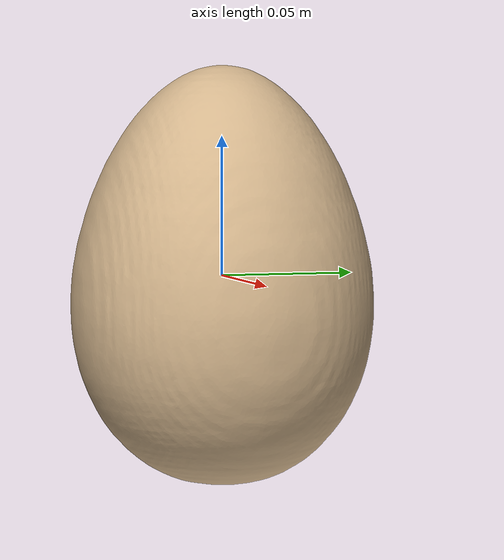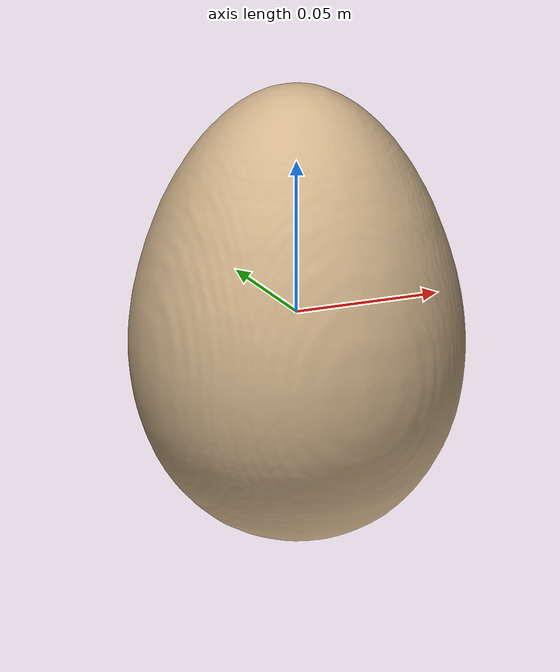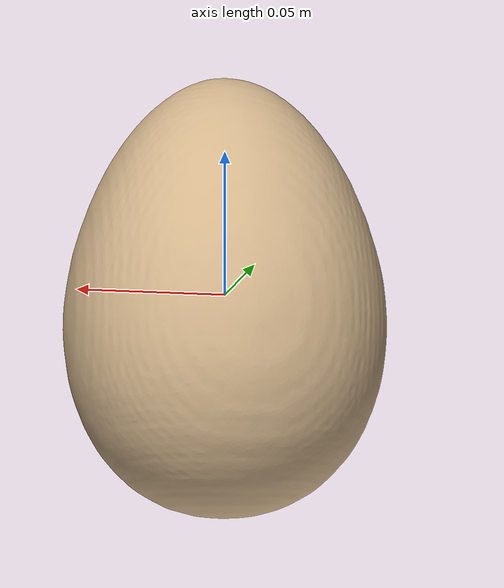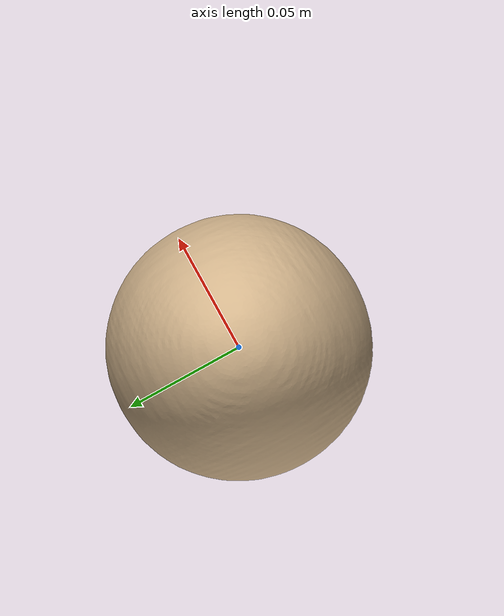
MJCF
<mujoco model="3143a4ac">
  <asset>
  <texture file="/textures/ceramic.png" name="tex-3143a4ac" type="2d" />
    <material name="3143a4ac" reflectance="0.5" texrepeat="1 1" texture="tex-3143a4ac" texuniform="false" specular="0.55" shininess="0.55" />
<mesh file="visual/model_normalized_0.obj" name="model_normalized_0_vis" scale="0.15 0.15 0.15" /><mesh file="collision/model_normalized_collision_13.obj" name="model_normalized_collision_13._coll" scale="0.15 0.15 0.15" /><mesh file="collision/model_normalized_collision_16.obj" name="model_normalized_collision_16._coll" scale="0.15 0.15 0.15" /><mesh file="collision/model_normalized_collision_30.obj" name="model_normalized_collision_30._coll" scale="0.15 0.15 0.15" /><mesh file="collision/model_normalized_collision_21.obj" name="model_normalized_collision_21._coll" scale="0.15 0.15 0.15" /><mesh file="collision/model_normalized_collision_1.obj" name="model_normalized_collision_1._coll" scale="0.15 0.15 0.15" /><mesh file="collision/model_normalized_collision_20.obj" name="model_normalized_collision_20._coll" scale="0.15 0.15 0.15" /><mesh file="collision/model_normalized_collision_27.obj" name="model_normalized_collision_27._coll" scale="0.15 0.15 0.15" /><mesh file="collision/model_normalized_collision_10.obj" name="model_normalized_collision_10._coll" scale="0.15 0.15 0.15" /><mesh file="collision/model_normalized_collision_24.obj" name="model_normalized_collision_24._coll" scale="0.15 0.15 0.15" /><mesh file="collision/model_normalized_collision_28.obj" name="model_normalized_collision_28._coll" scale="0.15 0.15 0.15" /><mesh file="collision/model_normalized_collision_25.obj" name="model_normalized_collision_25._coll" scale="0.15 0.15 0.15" /><mesh file="collision/model_normalized_collision_23.obj" name="model_normalized_collision_23._coll" scale="0.15 0.15 0.15" /><mesh file="collision/model_normalized_collision_6.obj" name="model_normalized_collision_6._coll" scale="0.15 0.15 0.15" /><mesh file="collision/model_normalized_collision_8.obj" name="model_normalized_collision_8._coll" scale="0.15 0.15 0.15" /><mesh file="collision/model_normalized_collision_2.obj" name="model_normalized_collision_2._coll" scale="0.15 0.15 0.15" /><mesh file="collision/model_normalized_collision_12.obj" name="model_normalized_collision_12._coll" scale="0.15 0.15 0.15" /><mesh file="collision/model_normalized_collision_4.obj" name="model_normalized_collision_4._coll" scale="0.15 0.15 0.15" /><mesh file="collision/model_normalized_collision_19.obj" name="model_normalized_collision_19._coll" scale="0.15 0.15 0.15" /><mesh file="collision/model_normalized_collision_5.obj" name="model_normalized_collision_5._coll" scale="0.15 0.15 0.15" /><mesh file="collision/model_normalized_collision_14.obj" name="model_normalized_collision_14._coll" scale="0.15 0.15 0.15" /><mesh file="collision/model_normalized_collision_11.obj" name="model_normalized_collision_11._coll" scale="0.15 0.15 0.15" /><mesh file="collision/model_normalized_collision_15.obj" name="model_normalized_collision_15._coll" scale="0.15 0.15 0.15" /><mesh file="collision/model_normalized_collision_18.obj" name="model_normalized_collision_18._coll" scale="0.15 0.15 0.15" /><mesh file="collision/model_normalized_collision_29.obj" name="model_normalized_collision_29._coll" scale="0.15 0.15 0.15" /><mesh file="collision/model_normalized_collision_26.obj" name="model_normalized_collision_26._coll" scale="0.15 0.15 0.15" /><mesh file="collision/model_normalized_collision_17.obj" name="model_normalized_collision_17._coll" scale="0.15 0.15 0.15" /><mesh file="collision/model_normalized_collision_31.obj" name="model_normalized_collision_31._coll" scale="0.15 0.15 0.15" /><mesh file="collision/model_normalized_collision_3.obj" name="model_normalized_collision_3._coll" scale="0.15 0.15 0.15" /><mesh file="collision/model_normalized_collision_9.obj" name="model_normalized_collision_9._coll" scale="0.15 0.15 0.15" /><mesh file="collision/model_normalized_collision_22.obj" name="model_normalized_collision_22._coll" scale="0.15 0.15 0.15" /><mesh file="collision/model_normalized_collision_7.obj" name="model_normalized_collision_7._coll" scale="0.15 0.15 0.15" /><mesh file="collision/model_normalized_collision_0.obj" name="model_normalized_collision_0._coll" scale="0.15 0.15 0.15" /><material name="material_0_24" specular="0.55" shininess="0.55" rgba="0.823529 0.705882 0.54902 1.0" /></asset><custom><text name="material_gt" data="ceramic" /></custom>
  <worldbody>
    <body>
      <body name="object">
      <geom solimp="0.998 0.998 0.001" solref="0.001 1" density="100" friction="0.95 0.3 0.1" type="mesh" mesh="model_normalized_0_vis" conaffinity="0" contype="0" group="1" material="material_0_24" /><geom solimp="0.998 0.998 0.001" solref="0.001 1" density="100" friction="0.95 0.3 0.1" type="mesh" mesh="model_normalized_collision_13._coll" group="0" rgba="0.8 0.8 0.8 0.0" /><geom solimp="0.998 0.998 0.001" solref="0.001 1" density="100" friction="0.95 0.3 0.1" type="mesh" mesh="model_normalized_collision_16._coll" group="0" rgba="0.8 0.8 0.8 0.0" /><geom solimp="0.998 0.998 0.001" solref="0.001 1" density="100" friction="0.95 0.3 0.1" type="mesh" mesh="model_normalized_collision_30._coll" group="0" rgba="0.8 0.8 0.8 0.0" /><geom solimp="0.998 0.998 0.001" solref="0.001 1" density="100" friction="0.95 0.3 0.1" type="mesh" mesh="model_normalized_collision_21._coll" group="0" rgba="0.8 0.8 0.8 0.0" /><geom solimp="0.998 0.998 0.001" solref="0.001 1" density="100" friction="0.95 0.3 0.1" type="mesh" mesh="model_normalized_collision_1._coll" group="0" rgba="0.8 0.8 0.8 0.0" /><geom solimp="0.998 0.998 0.001" solref="0.001 1" density="100" friction="0.95 0.3 0.1" type="mesh" mesh="model_normalized_collision_20._coll" group="0" rgba="0.8 0.8 0.8 0.0" /><geom solimp="0.998 0.998 0.001" solref="0.001 1" density="100" friction="0.95 0.3 0.1" type="mesh" mesh="model_normalized_collision_27._coll" group="0" rgba="0.8 0.8 0.8 0.0" /><geom solimp="0.998 0.998 0.001" solref="0.001 1" density="100" friction="0.95 0.3 0.1" type="mesh" mesh="model_normalized_collision_10._coll" group="0" rgba="0.8 0.8 0.8 0.0" /><geom solimp="0.998 0.998 0.001" solref="0.001 1" density="100" friction="0.95 0.3 0.1" type="mesh" mesh="model_normalized_collision_24._coll" group="0" rgba="0.8 0.8 0.8 0.0" /><geom solimp="0.998 0.998 0.001" solref="0.001 1" density="100" friction="0.95 0.3 0.1" type="mesh" mesh="model_normalized_collision_28._coll" group="0" rgba="0.8 0.8 0.8 0.0" /><geom solimp="0.998 0.998 0.001" solref="0.001 1" density="100" friction="0.95 0.3 0.1" type="mesh" mesh="model_normalized_collision_25._coll" group="0" rgba="0.8 0.8 0.8 0.0" /><geom solimp="0.998 0.998 0.001" solref="0.001 1" density="100" friction="0.95 0.3 0.1" type="mesh" mesh="model_normalized_collision_23._coll" group="0" rgba="0.8 0.8 0.8 0.0" /><geom solimp="0.998 0.998 0.001" solref="0.001 1" density="100" friction="0.95 0.3 0.1" type="mesh" mesh="model_normalized_collision_6._coll" group="0" rgba="0.8 0.8 0.8 0.0" /><geom solimp="0.998 0.998 0.001" solref="0.001 1" density="100" friction="0.95 0.3 0.1" type="mesh" mesh="model_normalized_collision_8._coll" group="0" rgba="0.8 0.8 0.8 0.0" /><geom solimp="0.998 0.998 0.001" solref="0.001 1" density="100" friction="0.95 0.3 0.1" type="mesh" mesh="model_normalized_collision_2._coll" group="0" rgba="0.8 0.8 0.8 0.0" /><geom solimp="0.998 0.998 0.001" solref="0.001 1" density="100" friction="0.95 0.3 0.1" type="mesh" mesh="model_normalized_collision_12._coll" group="0" rgba="0.8 0.8 0.8 0.0" /><geom solimp="0.998 0.998 0.001" solref="0.001 1" density="100" friction="0.95 0.3 0.1" type="mesh" mesh="model_normalized_collision_4._coll" group="0" rgba="0.8 0.8 0.8 0.0" /><geom solimp="0.998 0.998 0.001" solref="0.001 1" density="100" friction="0.95 0.3 0.1" type="mesh" mesh="model_normalized_collision_19._coll" group="0" rgba="0.8 0.8 0.8 0.0" /><geom solimp="0.998 0.998 0.001" solref="0.001 1" density="100" friction="0.95 0.3 0.1" type="mesh" mesh="model_normalized_collision_5._coll" group="0" rgba="0.8 0.8 0.8 0.0" /><geom solimp="0.998 0.998 0.001" solref="0.001 1" density="100" friction="0.95 0.3 0.1" type="mesh" mesh="model_normalized_collision_14._coll" group="0" rgba="0.8 0.8 0.8 0.0" /><geom solimp="0.998 0.998 0.001" solref="0.001 1" density="100" friction="0.95 0.3 0.1" type="mesh" mesh="model_normalized_collision_11._coll" group="0" rgba="0.8 0.8 0.8 0.0" /><geom solimp="0.998 0.998 0.001" solref="0.001 1" density="100" friction="0.95 0.3 0.1" type="mesh" mesh="model_normalized_collision_15._coll" group="0" rgba="0.8 0.8 0.8 0.0" /><geom solimp="0.998 0.998 0.001" solref="0.001 1" density="100" friction="0.95 0.3 0.1" type="mesh" mesh="model_normalized_collision_18._coll" group="0" rgba="0.8 0.8 0.8 0.0" /><geom solimp="0.998 0.998 0.001" solref="0.001 1" density="100" friction="0.95 0.3 0.1" type="mesh" mesh="model_normalized_collision_29._coll" group="0" rgba="0.8 0.8 0.8 0.0" /><geom solimp="0.998 0.998 0.001" solref="0.001 1" density="100" friction="0.95 0.3 0.1" type="mesh" mesh="model_normalized_collision_26._coll" group="0" rgba="0.8 0.8 0.8 0.0" /><geom solimp="0.998 0.998 0.001" solref="0.001 1" density="100" friction="0.95 0.3 0.1" type="mesh" mesh="model_normalized_collision_17._coll" group="0" rgba="0.8 0.8 0.8 0.0" /><geom solimp="0.998 0.998 0.001" solref="0.001 1" density="100" friction="0.95 0.3 0.1" type="mesh" mesh="model_normalized_collision_31._coll" group="0" rgba="0.8 0.8 0.8 0.0" /><geom solimp="0.998 0.998 0.001" solref="0.001 1" density="100" friction="0.95 0.3 0.1" type="mesh" mesh="model_normalized_collision_3._coll" group="0" rgba="0.8 0.8 0.8 0.0" /><geom solimp="0.998 0.998 0.001" solref="0.001 1" density="100" friction="0.95 0.3 0.1" type="mesh" mesh="model_normalized_collision_9._coll" group="0" rgba="0.8 0.8 0.8 0.0" /><geom solimp="0.998 0.998 0.001" solref="0.001 1" density="100" friction="0.95 0.3 0.1" type="mesh" mesh="model_normalized_collision_22._coll" group="0" rgba="0.8 0.8 0.8 0.0" /><geom solimp="0.998 0.998 0.001" solref="0.001 1" density="100" friction="0.95 0.3 0.1" type="mesh" mesh="model_normalized_collision_7._coll" group="0" rgba="0.8 0.8 0.8 0.0" /><geom solimp="0.998 0.998 0.001" solref="0.001 1" density="100" friction="0.95 0.3 0.1" type="mesh" mesh="model_normalized_collision_0._coll" group="0" rgba="0.8 0.8 0.8 0.0" /></body>
      <site rgba="0 0 0 0" size="0.005" pos="-7.346325000000958e-06 -0.0068777973749999995 -0.03864119939999999" name="bottom_site" />
      <site rgba="0 0 0 0" size="0.005" pos="-7.346325000000958e-06 -0.0068777973749999995 0.0418339491" name="top_site" />
      <site rgba="0 0 0 0" size="0.005" pos="0.0353077701 0.044090159399999995 0.0015963748499999999" name="horizontal_radius_site" />
    </body>
  </worldbody>
</mujoco>
